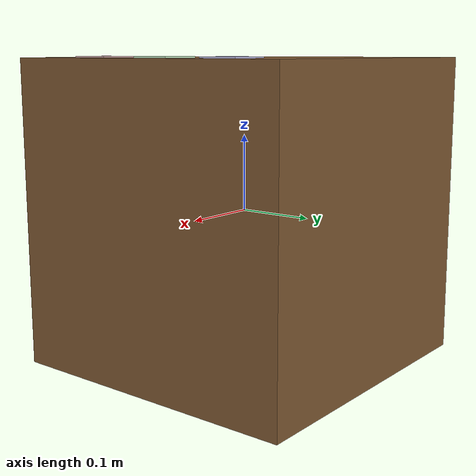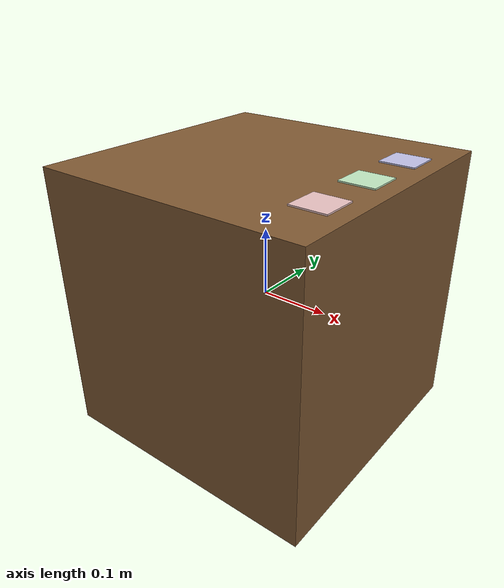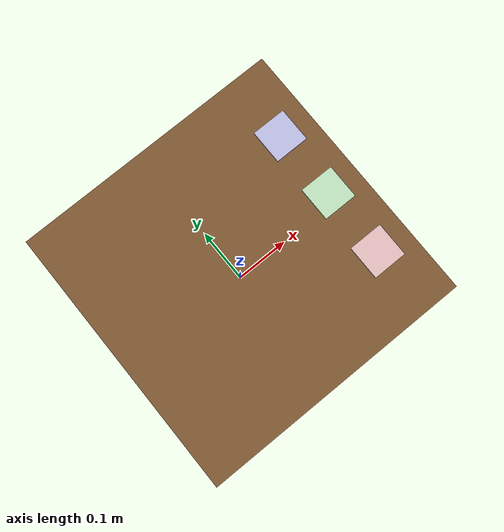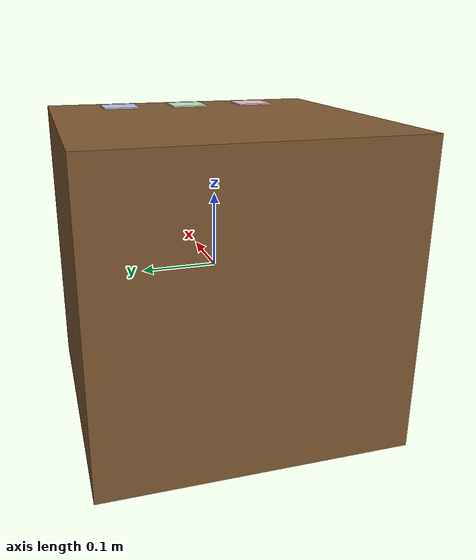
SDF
<?xml version="1.0"?>
<sdf version="1.7">
  <model name="simple_table">
    <static>true</static>
    <link name="link">
      <collision name="collision">
        <geometry>
          <box><size>0.4 0.4 0.4</size></box>
        </geometry>
      </collision>
      <visual name="visual">
        <geometry>
          <box><size>0.4 0.4 0.4</size></box>
        </geometry>
        <material>
          <ambient>0.5 0.35 0.2 1</ambient>
          <diffuse>0.5 0.35 0.2 1</diffuse>
        </material>
      </visual>

      <visual name="marker_red">
        <pose>0.15 -0.1 0.201 0 0 0</pose>
        <geometry>
          <box><size>0.05 0.05 0.002</size></box>
        </geometry>
        <material>
          <ambient>0.9 0.75 0.75 1</ambient>
          <diffuse>0.9 0.75 0.75 1</diffuse>
        </material>
      </visual>

      <visual name="marker_green">
        <pose>0.15 0.0 0.201 0 0 0</pose>
        <geometry>
          <box><size>0.05 0.05 0.002</size></box>
        </geometry>
        <material>
          <ambient>0.75 0.9 0.75 1</ambient>
          <diffuse>0.75 0.9 0.75 1</diffuse>
        </material>
      </visual>

      <visual name="marker_blue">
        <pose>0.15 0.1 0.201 0 0 0</pose>
        <geometry>
          <box><size>0.05 0.05 0.002</size></box>
        </geometry>
        <material>
          <ambient>0.75 0.75 0.9 1</ambient>
          <diffuse>0.75 0.75 0.9 1</diffuse>
        </material>
      </visual>
    </link>
  </model>
</sdf>
